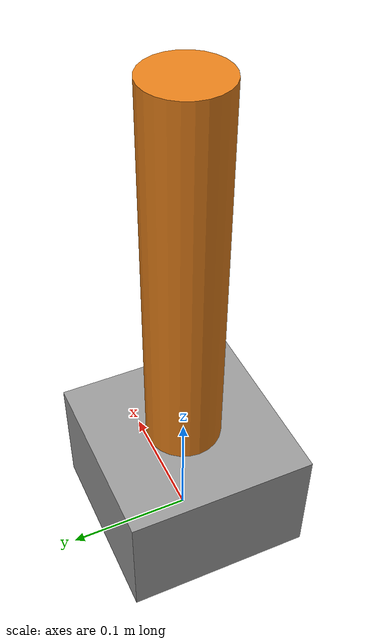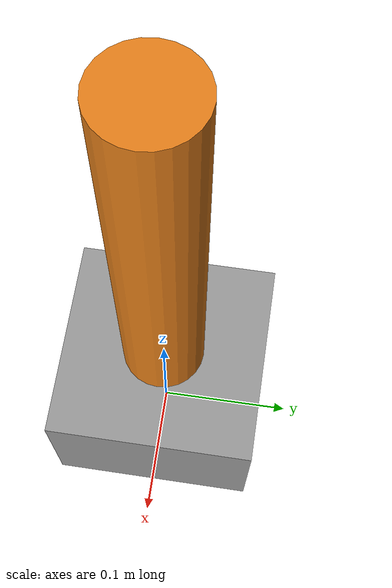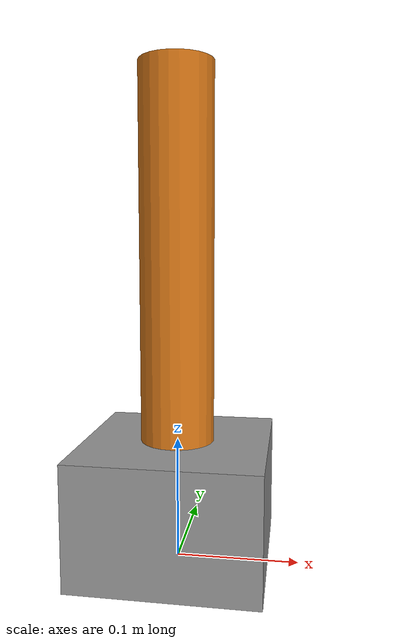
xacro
<?xml version="1.0"?>
<robot name="one_joint_arm" xmlns:xacro="http://www.ros.org/wiki/xacro">

  <material name="grey">
    <color rgba="0.6 0.6 0.6 1.0"/>
  </material>
  <material name="orange">
    <color rgba="0.9 0.5 0.1 1.0"/>
  </material>

  <link name="base_link">
    <visual>
      <origin xyz="0 0 0.05" rpy="0 0 0"/>
      <geometry>
        <box size="0.15 0.15 0.10"/>
      </geometry>
      <material name="grey"/>
    </visual>
    <collision>
      <origin xyz="0 0 0.05" rpy="0 0 0"/>
      <geometry>
        <box size="0.15 0.15 0.10"/>
      </geometry>
    </collision>
    <inertial>
      <mass value="1.0"/>
      <origin xyz="0 0 0.05" rpy="0 0 0"/>
      <inertia ixx="0.001" ixy="0.0" ixz="0.0" iyy="0.001" iyz="0.0" izz="0.001"/>
    </inertial>
  </link>

  <link name="arm_link_1">
    <visual>
      <origin xyz="0 0 0.15" rpy="0 0 0"/>
      <geometry>
        <cylinder radius="0.03" length="0.30"/>
      </geometry>
      <material name="orange"/>
    </visual>
    <collision>
      <origin xyz="0 0 0.15" rpy="0 0 0"/>
      <geometry>
        <cylinder radius="0.03" length="0.30"/>
      </geometry>
    </collision>
    <inertial>
      <mass value="0.5"/>
      <origin xyz="0 0 0.15" rpy="0 0 0"/>
      <inertia ixx="0.001" ixy="0.0" ixz="0.0" iyy="0.001" iyz="0.0" izz="0.001"/>
    </inertial>
  </link>

  <joint name="base_joint" type="revolute">
    <parent link="base_link"/>
    <child link="arm_link_1"/>
    <origin xyz="0 0 0.10" rpy="0 0 0"/>
    <axis xyz="0 0 1"/>
    <limit lower="-1.57" upper="1.57" effort="20" velocity="0.5"/>
  </joint>

</robot>
